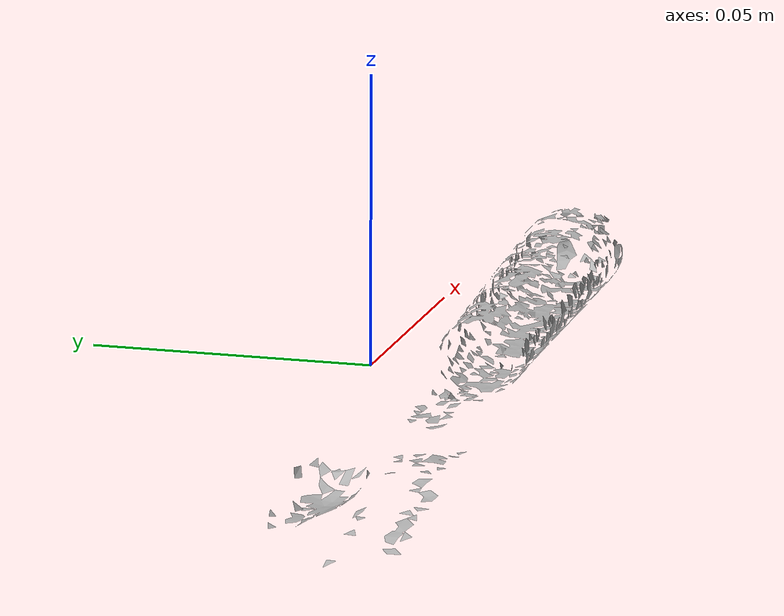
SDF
<?xml version="1.0" ?>
<sdf version="1.4">
  <model name='ycb_030_fork'>
    <link name='body'>
      <inertial>
        <mass>0.034</mass>
        <pose>0.00849956163703 -0.0215331125169 0.00670927429124 0 0 0</pose>
        <inertia>
          <ixx>1.15216206502e-06</ixx>
          <ixy>8.22983124788e-08</ixy>
          <ixz>-1.0962197087e-06</ixz>
          <iyy>8.14007889025e-05</iyy>
          <iyz>6.44080059524e-08</iyz>
          <izz>8.18835433988e-05</izz>
        </inertia>
      </inertial>
      <visual name='ycb_030_fork_visual'>
        <pose>0 0 0 0 0 0</pose>
        <geometry>
          <mesh>
            <uri>model://ycb_030_fork/meshes/textured.dae</uri>
          </mesh>
        </geometry>
      </visual>
      <collision name='ycb_030_fork_collision'>
        <pose>0 0 0 0 0 0</pose>
        <geometry>
          <mesh>
            <uri>model://ycb_030_fork/meshes/nontextured.stl</uri>
          </mesh>
        </geometry>
        <max_contacts>10</max_contacts>
      </collision>
    </link>
  </model>
</sdf>
